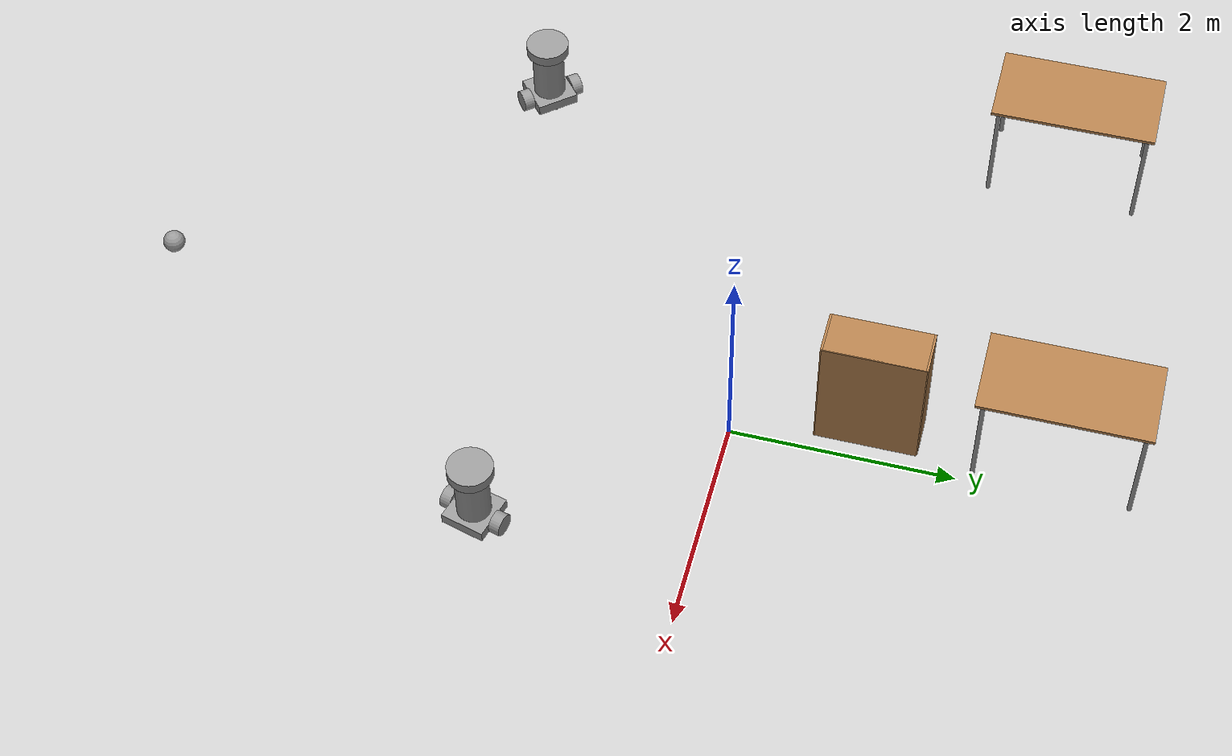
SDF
<sdf version="1.6">
 <world name="default">
  <model name="ground_plane">
   <static>1</static>
   <link name="link">
    <collision name="collision">
     <geometry><plane><normal>0 0 1</normal><size>100 100</size></plane></geometry>
     <surface>
      <contact><collide_bitmask>65535</collide_bitmask></contact>
      <friction><ode><mu>100</mu><mu2>50</mu2></ode></friction>
     </surface>
    </collision>
    <visual name="visual">
     <cast_shadows>0</cast_shadows>
     <geometry><plane><normal>0 0 1</normal><size>100 100</size></plane></geometry>
     <material>
      <script><uri>file://media/materials/scripts/gazebo.material</uri><name>Gazebo/Grey</name></script>
     </material>
    </visual>
   </link>
  </model>
  <model name="table_clone">
   <static>1</static>
   <link name="link">
    <collision name="surface">
     <pose>0 0 1 0 -0 0</pose>
     <geometry><box><size>1.5 0.8 0.03</size></box></geometry>
     <surface><friction><ode><mu>0.6</mu><mu2>0.6</mu2></ode></friction></surface>
    </collision>
    <visual name="visual1">
     <pose>0 0 1 0 -0 0</pose>
     <geometry><box><size>1.5 0.8 0.03</size></box></geometry>
     <material>
      <script><uri>file://media/materials/scripts/gazebo.material</uri><name>Gazebo/Wood</name></script>
     </material>
    </visual>
    <collision name="front_left_leg">
     <pose>0.68 0.38 0.5 0 -0 0</pose>
     <geometry><cylinder><radius>0.02</radius><length>1</length></cylinder></geometry>
    </collision>
    <visual name="front_left_leg">
     <pose>0.68 0.38 0.5 0 -0 0</pose>
     <geometry><cylinder><radius>0.02</radius><length>1</length></cylinder></geometry>
     <material>
      <script><uri>file://media/materials/scripts/gazebo.material</uri><name>Gazebo/Grey</name></script>
     </material>
    </visual>
    <collision name="front_right_leg">
     <pose>0.68 -0.38 0.5 0 -0 0</pose>
     <geometry><cylinder><radius>0.02</radius><length>1</length></cylinder></geometry>
    </collision>
    <visual name="front_right_leg">
     <pose>0.68 -0.38 0.5 0 -0 0</pose>
     <geometry><cylinder><radius>0.02</radius><length>1</length></cylinder></geometry>
     <material>
      <script><uri>file://media/materials/scripts/gazebo.material</uri><name>Gazebo/Grey</name></script>
     </material>
    </visual>
    <collision name="back_right_leg">
     <pose>-0.68 -0.38 0.5 0 -0 0</pose>
     <geometry><cylinder><radius>0.02</radius><length>1</length></cylinder></geometry>
    </collision>
    <visual name="back_right_leg">
     <pose>-0.68 -0.38 0.5 0 -0 0</pose>
     <geometry><cylinder><radius>0.02</radius><length>1</length></cylinder></geometry>
     <material>
      <script><uri>file://media/materials/scripts/gazebo.material</uri><name>Gazebo/Grey</name></script>
     </material>
    </visual>
    <collision name="back_left_leg">
     <pose>-0.68 0.38 0.5 0 -0 0</pose>
     <geometry><cylinder><radius>0.02</radius><length>1</length></cylinder></geometry>
    </collision>
    <visual name="back_left_leg">
     <pose>-0.68 0.38 0.5 0 -0 0</pose>
     <geometry><cylinder><radius>0.02</radius><length>1</length></cylinder></geometry>
     <material>
      <script><uri>file://media/materials/scripts/gazebo.material</uri><name>Gazebo/Grey</name></script>
     </material>
    </visual>
   </link>
   <pose>-0.445123 2.80854 0 0 -0 1.57</pose>
  </model>
  <model name="table_clone_1">
   <static>1</static>
   <link name="link">
    <collision name="surface">
     <pose>0 0 1 0 -0 0</pose>
     <geometry><box><size>1.5 0.8 0.03</size></box></geometry>
     <surface><friction><ode><mu>0.6</mu><mu2>0.6</mu2></ode></friction></surface>
    </collision>
    <visual name="visual1">
     <pose>0 0 1 0 -0 0</pose>
     <geometry><box><size>1.5 0.8 0.03</size></box></geometry>
     <material>
      <script><uri>file://media/materials/scripts/gazebo.material</uri><name>Gazebo/Wood</name></script>
     </material>
    </visual>
    <collision name="front_left_leg">
     <pose>0.68 0.38 0.5 0 -0 0</pose>
     <geometry><cylinder><radius>0.02</radius><length>1</length></cylinder></geometry>
    </collision>
    <visual name="front_left_leg">
     <pose>0.68 0.38 0.5 0 -0 0</pose>
     <geometry><cylinder><radius>0.02</radius><length>1</length></cylinder></geometry>
     <material>
      <script><uri>file://media/materials/scripts/gazebo.material</uri><name>Gazebo/Grey</name></script>
     </material>
    </visual>
    <collision name="front_right_leg">
     <pose>0.68 -0.38 0.5 0 -0 0</pose>
     <geometry><cylinder><radius>0.02</radius><length>1</length></cylinder></geometry>
    </collision>
    <visual name="front_right_leg">
     <pose>0.68 -0.38 0.5 0 -0 0</pose>
     <geometry><cylinder><radius>0.02</radius><length>1</length></cylinder></geometry>
     <material>
      <script><uri>file://media/materials/scripts/gazebo.material</uri><name>Gazebo/Grey</name></script>
     </material>
    </visual>
    <collision name="back_right_leg">
     <pose>-0.68 -0.38 0.5 0 -0 0</pose>
     <geometry><cylinder><radius>0.02</radius><length>1</length></cylinder></geometry>
    </collision>
    <visual name="back_right_leg">
     <pose>-0.68 -0.38 0.5 0 -0 0</pose>
     <geometry><cylinder><radius>0.02</radius><length>1</length></cylinder></geometry>
     <material>
      <script><uri>file://media/materials/scripts/gazebo.material</uri><name>Gazebo/Grey</name></script>
     </material>
    </visual>
    <collision name="back_left_leg">
     <pose>-0.68 0.38 0.5 0 -0 0</pose>
     <geometry><cylinder><radius>0.02</radius><length>1</length></cylinder></geometry>
    </collision>
    <visual name="back_left_leg">
     <pose>-0.68 0.38 0.5 0 -0 0</pose>
     <geometry><cylinder><radius>0.02</radius><length>1</length></cylinder></geometry>
     <material>
      <script><uri>file://media/materials/scripts/gazebo.material</uri><name>Gazebo/Grey</name></script>
     </material>
    </visual>
   </link>
   <pose>-3.78233 2.37452 0 0 -0 1.57</pose>
  </model>
  <model name="bookshelf_0">
   <static>1</static>
   <link name="link">
    <inertial><mass>1</mass></inertial>
    <collision name="back">
     <pose>0 0.005 0.6 0 -0 0</pose>
     <geometry><box><size>0.9 0.01 1.2</size></box></geometry>
    </collision>
    <visual name="visual1">
     <pose>0 0.005 0.6 0 -0 0</pose>
     <geometry><box><size>0.9 0.01 1.2</size></box></geometry>
     <material>
      <script><uri>file://media/materials/scripts/gazebo.material</uri><name>Gazebo/Wood</name></script>
     </material>
    </visual>
    <collision name="left_side">
     <pose>0.45 -0.195 0.6 0 -0 0</pose>
     <geometry><box><size>0.02 0.4 1.2</size></box></geometry>
    </collision>
    <visual name="visual2">
     <pose>0.45 -0.195 0.6 0 -0 0</pose>
     <geometry><box><size>0.02 0.4 1.2</size></box></geometry>
     <material>
      <script><uri>file://media/materials/scripts/gazebo.material</uri><name>Gazebo/Wood</name></script>
     </material>
    </visual>
    <collision name="right_side">
     <pose>-0.45 -0.195 0.6 0 -0 0</pose>
     <geometry><box><size>0.02 0.4 1.2</size></box></geometry>
    </collision>
    <visual name="visual3">
     <pose>-0.45 -0.195 0.6 0 -0 0</pose>
     <geometry><box><size>0.02 0.4 1.2</size></box></geometry>
     <material>
      <script><uri>file://media/materials/scripts/gazebo.material</uri><name>Gazebo/Wood</name></script>
     </material>
    </visual>
    <collision name="bottom">
     <pose>0 -0.195 0.03 0 -0 0</pose>
     <geometry><box><size>0.88 0.4 0.06</size></box></geometry>
    </collision>
    <visual name="visual4">
     <pose>0 -0.195 0.03 0 -0 0</pose>
     <geometry><box><size>0.88 0.4 0.06</size></box></geometry>
     <material>
      <script><uri>file://media/materials/scripts/gazebo.material</uri><name>Gazebo/Wood</name></script>
     </material>
    </visual>
    <collision name="top">
     <pose>0 -0.195 1.19 0 -0 0</pose>
     <geometry><box><size>0.88 0.4 0.02</size></box></geometry>
    </collision>
    <visual name="visual5">
     <pose>0 -0.195 1.19 0 -0 0</pose>
     <geometry><box><size>0.88 0.4 0.02</size></box></geometry>
     <material>
      <script><uri>file://media/materials/scripts/gazebo.material</uri><name>Gazebo/Wood</name></script>
     </material>
    </visual>
    <collision name="low_shelf">
     <pose>0 -0.195 0.43 0 -0 0</pose>
     <geometry><box><size>0.88 0.4 0.02</size></box></geometry>
    </collision>
    <visual name="visual6">
     <pose>0 -0.195 0.43 0 -0 0</pose>
     <geometry><box><size>0.88 0.4 0.02</size></box></geometry>
     <material>
      <script><uri>file://media/materials/scripts/gazebo.material</uri><name>Gazebo/Wood</name></script>
     </material>
    </visual>
    <collision name="high_shelf">
     <pose>0 -0.195 0.8 0 -0 0</pose>
     <geometry><box><size>0.88 0.4 0.02</size></box></geometry>
    </collision>
    <visual name="visual7">
     <pose>0 -0.195 0.8 0 -0 0</pose>
     <geometry><box><size>0.88 0.4 0.02</size></box></geometry>
     <material>
      <script><uri>file://media/materials/scripts/gazebo.material</uri><name>Gazebo/Wood</name></script>
     </material>
    </visual>
   </link>
   <pose>-0.161686 1.17476 0 0 0 -1.57</pose>
  </model>
  <model name="ServeronWheels">
   <link name="link_4">
    <pose>1.37401 -0.876349 0.5 1.5e-05 1e-06 -0.001069</pose>
    <inertial>
     <mass>1</mass>
     <inertia>
      <ixx>0.166667</ixx>
      <ixy>0</ixy>
      <ixz>0</ixz>
      <iyy>0.166667</iyy>
      <iyz>0</iyz>
      <izz>0.166667</izz>
     </inertia>
    </inertial>
    <visual name="visual">
     <geometry><box><size>0.4 0.4 0.1</size></box></geometry>
     <material>
      <lighting>1</lighting>
      <script><uri>file://media/materials/scripts/gazebo.material</uri><name>Gazebo/Grey</name></script>
      <shader type="pixel"><normal_map>__default__</normal_map></shader>
      <ambient>0.3 0.3 0.3 1</ambient>
      <diffuse>0.7 0.7 0.7 1</diffuse>
      <specular>0.01 0.01 0.01 1</specular>
      <emissive>0 0 0 1</emissive>
     </material>
    </visual>
    <collision name="collision">
     <geometry><box><size>0.4 0.4 0.1</size></box></geometry>
     <surface>
      <friction>
       <ode><mu>1</mu><mu2>1</mu2><fdir1>0 0 0</fdir1><slip1>0</slip1><slip2>0</slip2></ode>
       <torsional>
        <coefficient>1</coefficient>
        <patch_radius>0</patch_radius>
        <surface_radius>0</surface_radius>
        <use_patch_radius>1</use_patch_radius>
        <ode><slip>0</slip></ode>
       </torsional>
      </friction>
      <bounce><restitution_coefficient>0</restitution_coefficient><threshold>1e+06</threshold></bounce>
      <contact>
       <collide_without_contact>0</collide_without_contact>
       <collide_without_contact_bitmask>1</collide_without_contact_bitmask>
       <collide_bitmask>1</collide_bitmask>
       <ode>
        <soft_cfm>0</soft_cfm>
        <soft_erp>0.2</soft_erp>
        <kp>1e+13</kp>
        <kd>1</kd>
        <max_vel>0.01</max_vel>
        <min_depth>0</min_depth>
       </ode>
       <bullet>
        <split_impulse>1</split_impulse>
        <split_impulse_penetration_threshold>-0.01</split_impulse_penetration_threshold>
        <soft_cfm>0</soft_cfm>
        <soft_erp>0.2</soft_erp>
        <kp>1e+13</kp>
        <kd>1</kd>
       </bullet>
      </contact>
     </surface>
    </collision>
   </link>
   <link name="link_0">
    <pose>1.22401 -0.876187 0.425001 0 -0 0</pose>
    <inertial>
     <mass>1</mass>
     <inertia><ixx>0.1</ixx><ixy>0</ixy><ixz>0</ixz><iyy>0.1</iyy><iyz>0</iyz><izz>0.1</izz></inertia>
    </inertial>
    <visual name="visual">
     <geometry><sphere><radius>0.025</radius></sphere></geometry>
     <material>
      <lighting>1</lighting>
      <script><uri>file://media/materials/scripts/gazebo.material</uri><name>Gazebo/Grey</name></script>
      <shader type="pixel"><normal_map>__default__</normal_map></shader>
      <ambient>0.3 0.3 0.3 1</ambient>
      <diffuse>0.7 0.7 0.7 1</diffuse>
      <specular>0.01 0.01 0.01 1</specular>
      <emissive>0 0 0 1</emissive>
     </material>
    </visual>
    <collision name="collision">
     <geometry><sphere><radius>0.025</radius></sphere></geometry>
     <surface>
      <friction>
       <ode><mu>1</mu><mu2>1</mu2><fdir1>0 0 0</fdir1><slip1>0</slip1><slip2>0</slip2></ode>
       <torsional>
        <coefficient>1</coefficient>
        <patch_radius>0</patch_radius>
        <surface_radius>0</surface_radius>
        <use_patch_radius>1</use_patch_radius>
        <ode><slip>0</slip></ode>
       </torsional>
      </friction>
      <bounce><restitution_coefficient>0</restitution_coefficient><threshold>1e+06</threshold></bounce>
      <contact>
       <collide_without_contact>0</collide_without_contact>
       <collide_without_contact_bitmask>1</collide_without_contact_bitmask>
       <collide_bitmask>1</collide_bitmask>
       <ode>
        <soft_cfm>0</soft_cfm>
        <soft_erp>0.2</soft_erp>
        <kp>1e+13</kp>
        <kd>1</kd>
        <max_vel>0.01</max_vel>
        <min_depth>0</min_depth>
       </ode>
       <bullet>
        <split_impulse>1</split_impulse>
        <split_impulse_penetration_threshold>-0.01</split_impulse_penetration_threshold>
        <soft_cfm>0</soft_cfm>
        <soft_erp>0.2</soft_erp>
        <kp>1e+13</kp>
        <kd>1</kd>
       </bullet>
      </contact>
     </surface>
    </collision>
   </link>
   <link name="link_0_clone">
    <pose>1.52401 -0.876509 0.425 0 -0 0</pose>
    <inertial>
     <mass>1</mass>
     <inertia><ixx>0.1</ixx><ixy>0</ixy><ixz>0</ixz><iyy>0.1</iyy><iyz>0</iyz><izz>0.1</izz></inertia>
    </inertial>
    <visual name="visual">
     <geometry><sphere><radius>0.025</radius></sphere></geometry>
     <material>
      <lighting>1</lighting>
      <script><uri>file://media/materials/scripts/gazebo.material</uri><name>Gazebo/Grey</name></script>
      <shader type="pixel"><normal_map>__default__</normal_map></shader>
      <ambient>0.3 0.3 0.3 1</ambient>
      <diffuse>0.7 0.7 0.7 1</diffuse>
      <specular>0.01 0.01 0.01 1</specular>
      <emissive>0 0 0 1</emissive>
     </material>
    </visual>
    <collision name="collision">
     <geometry><sphere><radius>0.025</radius></sphere></geometry>
     <surface>
      <friction>
       <ode><mu>1</mu><mu2>1</mu2><fdir1>0 0 0</fdir1><slip1>0</slip1><slip2>0</slip2></ode>
       <torsional>
        <coefficient>1</coefficient>
        <patch_radius>0</patch_radius>
        <surface_radius>0</surface_radius>
        <use_patch_radius>1</use_patch_radius>
        <ode><slip>0</slip></ode>
       </torsional>
      </friction>
      <bounce><restitution_coefficient>0</restitution_coefficient><threshold>1e+06</threshold></bounce>
      <contact>
       <collide_without_contact>0</collide_without_contact>
       <collide_without_contact_bitmask>1</collide_without_contact_bitmask>
       <collide_bitmask>1</collide_bitmask>
       <ode>
        <soft_cfm>0</soft_cfm>
        <soft_erp>0.2</soft_erp>
        <kp>1e+13</kp>
        <kd>1</kd>
        <max_vel>0.01</max_vel>
        <min_depth>0</min_depth>
       </ode>
       <bullet>
        <split_impulse>1</split_impulse>
        <split_impulse_penetration_threshold>-0.01</split_impulse_penetration_threshold>
        <soft_cfm>0</soft_cfm>
        <soft_erp>0.2</soft_erp>
        <kp>1e+13</kp>
        <kd>1</kd>
       </bullet>
      </contact>
     </surface>
    </collision>
   </link>
   <link name="link_5">
    <pose>1.35374 -1.12644 0.499883 1.57 1e-06 -0.001069</pose>
    <inertial>
     <mass>1</mass>
     <inertia><ixx>0.145833</ixx><ixy>0</ixy><ixz>0</ixz><iyy>0.145833</iyy><iyz>0</iyz><izz>0.125</izz></inertia>
    </inertial>
    <visual name="visual">
     <geometry><cylinder><radius>0.1</radius><length>0.1</length></cylinder></geometry>
     <material>
      <lighting>1</lighting>
      <script><uri>file://media/materials/scripts/gazebo.material</uri><name>Gazebo/Grey</name></script>
      <shader type="pixel"><normal_map>__default__</normal_map></shader>
      <ambient>0.3 0.3 0.3 1</ambient>
      <diffuse>0.7 0.7 0.7 1</diffuse>
      <specular>0.01 0.01 0.01 1</specular>
      <emissive>0 0 0 1</emissive>
     </material>
    </visual>
    <collision name="collision">
     <geometry><cylinder><radius>0.1</radius><length>0.1</length></cylinder></geometry>
     <surface>
      <friction>
       <ode><mu>1</mu><mu2>1</mu2><fdir1>0 0 0</fdir1><slip1>0</slip1><slip2>0</slip2></ode>
       <torsional>
        <coefficient>1</coefficient>
        <patch_radius>0</patch_radius>
        <surface_radius>0</surface_radius>
        <use_patch_radius>1</use_patch_radius>
        <ode><slip>0</slip></ode>
       </torsional>
      </friction>
      <bounce><restitution_coefficient>0</restitution_coefficient><threshold>1e+06</threshold></bounce>
      <contact>
       <collide_without_contact>0</collide_without_contact>
       <collide_without_contact_bitmask>1</collide_without_contact_bitmask>
       <collide_bitmask>1</collide_bitmask>
       <ode>
        <soft_cfm>0</soft_cfm>
        <soft_erp>0.2</soft_erp>
        <kp>1e+13</kp>
        <kd>1</kd>
        <max_vel>0.01</max_vel>
        <min_depth>0</min_depth>
       </ode>
       <bullet>
        <split_impulse>1</split_impulse>
        <split_impulse_penetration_threshold>-0.01</split_impulse_penetration_threshold>
        <soft_cfm>0</soft_cfm>
        <soft_erp>0.2</soft_erp>
        <kp>1e+13</kp>
        <kd>1</kd>
       </bullet>
      </contact>
     </surface>
    </collision>
   </link>
   <link name="link_5_clone">
    <pose>1.37428 -0.626162 0.499988 1.57001 2e-06 -0.002138</pose>
    <inertial>
     <mass>1</mass>
     <inertia><ixx>0.145833</ixx><ixy>0</ixy><ixz>0</ixz><iyy>0.145833</iyy><iyz>0</iyz><izz>0.125</izz></inertia>
    </inertial>
    <visual name="visual">
     <geometry><cylinder><radius>0.1</radius><length>0.1</length></cylinder></geometry>
     <material>
      <lighting>1</lighting>
      <script><uri>file://media/materials/scripts/gazebo.material</uri><name>Gazebo/Grey</name></script>
      <shader type="pixel"><normal_map>__default__</normal_map></shader>
      <ambient>0.3 0.3 0.3 1</ambient>
      <diffuse>0.7 0.7 0.7 1</diffuse>
      <specular>0.01 0.01 0.01 1</specular>
      <emissive>0 0 0 1</emissive>
     </material>
    </visual>
    <collision name="collision">
     <geometry><cylinder><radius>0.1</radius><length>0.1</length></cylinder></geometry>
     <surface>
      <friction>
       <ode><mu>1</mu><mu2>1</mu2><fdir1>0 0 0</fdir1><slip1>0</slip1><slip2>0</slip2></ode>
       <torsional>
        <coefficient>1</coefficient>
        <patch_radius>0</patch_radius>
        <surface_radius>0</surface_radius>
        <use_patch_radius>1</use_patch_radius>
        <ode><slip>0</slip></ode>
       </torsional>
      </friction>
      <bounce><restitution_coefficient>0</restitution_coefficient><threshold>1e+06</threshold></bounce>
      <contact>
       <collide_without_contact>0</collide_without_contact>
       <collide_without_contact_bitmask>1</collide_without_contact_bitmask>
       <collide_bitmask>1</collide_bitmask>
       <ode>
        <soft_cfm>0</soft_cfm>
        <soft_erp>0.2</soft_erp>
        <kp>1e+13</kp>
        <kd>1</kd>
        <max_vel>0.01</max_vel>
        <min_depth>0</min_depth>
       </ode>
       <bullet>
        <split_impulse>1</split_impulse>
        <split_impulse_penetration_threshold>-0.01</split_impulse_penetration_threshold>
        <soft_cfm>0</soft_cfm>
        <soft_erp>0.2</soft_erp>
        <kp>1e+13</kp>
        <kd>1</kd>
       </bullet>
      </contact>
     </surface>
    </collision>
   </link>
   <link name="link_5_clone_clone">
    <pose>1.37401 -0.876353 0.799991 0 3e-06 -0.003207</pose>
    <inertial>
     <mass>1</mass>
     <inertia><ixx>0.145833</ixx><ixy>0</ixy><ixz>0</ixz><iyy>0.145833</iyy><iyz>0</iyz><izz>0.125</izz></inertia>
    </inertial>
    <visual name="visual">
     <geometry><cylinder><radius>0.15</radius><length>0.5</length></cylinder></geometry>
     <material>
      <lighting>1</lighting>
      <script><uri>file://media/materials/scripts/gazebo.material</uri><name>Gazebo/Grey</name></script>
      <shader type="pixel"><normal_map>__default__</normal_map></shader>
      <ambient>0.3 0.3 0.3 1</ambient>
      <diffuse>0.7 0.7 0.7 1</diffuse>
      <specular>0.01 0.01 0.01 1</specular>
      <emissive>0 0 0 1</emissive>
     </material>
    </visual>
    <collision name="collision">
     <geometry><cylinder><radius>0.15</radius><length>0.5</length></cylinder></geometry>
     <surface>
      <friction>
       <ode><mu>1</mu><mu2>1</mu2><fdir1>0 0 0</fdir1><slip1>0</slip1><slip2>0</slip2></ode>
       <torsional>
        <coefficient>1</coefficient>
        <patch_radius>0</patch_radius>
        <surface_radius>0</surface_radius>
        <use_patch_radius>1</use_patch_radius>
        <ode><slip>0</slip></ode>
       </torsional>
      </friction>
      <bounce><restitution_coefficient>0</restitution_coefficient><threshold>1e+06</threshold></bounce>
      <contact>
       <collide_without_contact>0</collide_without_contact>
       <collide_without_contact_bitmask>1</collide_without_contact_bitmask>
       <collide_bitmask>1</collide_bitmask>
       <ode>
        <soft_cfm>0</soft_cfm>
        <soft_erp>0.2</soft_erp>
        <kp>1e+13</kp>
        <kd>1</kd>
        <max_vel>0.01</max_vel>
        <min_depth>0</min_depth>
       </ode>
       <bullet>
        <split_impulse>1</split_impulse>
        <split_impulse_penetration_threshold>-0.01</split_impulse_penetration_threshold>
        <soft_cfm>0</soft_cfm>
        <soft_erp>0.2</soft_erp>
        <kp>1e+13</kp>
        <kd>1</kd>
       </bullet>
      </contact>
     </surface>
    </collision>
   </link>
   <link name="link_5_clone_clone_clone">
    <pose>1.37401 -0.876358 1.1 1.5e-05 4e-06 -0.004276</pose>
    <inertial>
     <mass>1</mass>
     <inertia><ixx>0.145833</ixx><ixy>0</ixy><ixz>0</ixz><iyy>0.145833</iyy><iyz>0</iyz><izz>0.125</izz></inertia>
    </inertial>
    <visual name="visual">
     <geometry><cylinder><radius>0.2</radius><length>0.1</length></cylinder></geometry>
     <material>
      <lighting>1</lighting>
      <script><uri>file://media/materials/scripts/gazebo.material</uri><name>Gazebo/Grey</name></script>
      <shader type="pixel"><normal_map>__default__</normal_map></shader>
      <ambient>0.3 0.3 0.3 1</ambient>
      <diffuse>0.7 0.7 0.7 1</diffuse>
      <specular>0.01 0.01 0.01 1</specular>
      <emissive>0 0 0 1</emissive>
     </material>
    </visual>
    <collision name="collision">
     <geometry><cylinder><radius>0.2</radius><length>0.1</length></cylinder></geometry>
     <surface>
      <friction>
       <ode><mu>1</mu><mu2>1</mu2><fdir1>0 0 0</fdir1><slip1>0</slip1><slip2>0</slip2></ode>
       <torsional>
        <coefficient>1</coefficient>
        <patch_radius>0</patch_radius>
        <surface_radius>0</surface_radius>
        <use_patch_radius>1</use_patch_radius>
        <ode><slip>0</slip></ode>
       </torsional>
      </friction>
      <bounce><restitution_coefficient>0</restitution_coefficient><threshold>1e+06</threshold></bounce>
      <contact>
       <collide_without_contact>0</collide_without_contact>
       <collide_without_contact_bitmask>1</collide_without_contact_bitmask>
       <collide_bitmask>1</collide_bitmask>
       <ode>
        <soft_cfm>0</soft_cfm>
        <soft_erp>0.2</soft_erp>
        <kp>1e+13</kp>
        <kd>1</kd>
        <max_vel>0.01</max_vel>
        <min_depth>0</min_depth>
       </ode>
       <bullet>
        <split_impulse>1</split_impulse>
        <split_impulse_penetration_threshold>-0.01</split_impulse_penetration_threshold>
        <soft_cfm>0</soft_cfm>
        <soft_erp>0.2</soft_erp>
        <kp>1e+13</kp>
        <kd>1</kd>
       </bullet>
      </contact>
     </surface>
    </collision>
   </link>
   <joint name="link_4_JOINT_1" type="ball">
    <parent>link_4</parent>
    <child>link_0_clone</child>
    <physics>
     <ode><limit><cfm>0</cfm><erp>0.2</erp></limit><suspension><cfm>0</cfm><erp>0.2</erp></suspension></ode>
    </physics>
   </joint>
   <joint name="link_4_JOINT_4_0" type="ball">
    <parent>link_4</parent>
    <child>link_0</child>
    <physics>
     <ode><limit><cfm>0</cfm><erp>0.2</erp></limit><suspension><cfm>0</cfm><erp>0.2</erp></suspension></ode>
    </physics>
   </joint>
   <joint name="link_4_JOINT_4" type="revolute">
    <parent>link_4</parent>
    <child>link_5</child>
    <axis>
     <xyz>0 0 1</xyz>
     <use_parent_model_frame>0</use_parent_model_frame>
     <limit>
      <lower>-1.79769e+308</lower>
      <upper>1.79769e+308</upper>
      <effort>-1</effort>
      <velocity>-1</velocity>
     </limit>
     <dynamics>
      <spring_reference>0</spring_reference>
      <spring_stiffness>0</spring_stiffness>
      <damping>0</damping>
      <friction>0</friction>
     </dynamics>
    </axis>
    <physics>
     <ode><limit><cfm>0</cfm><erp>0.2</erp></limit><suspension><cfm>0</cfm><erp>0.2</erp></suspension></ode>
    </physics>
   </joint>
   <joint name="link_4_JOINT_5" type="revolute">
    <parent>link_4</parent>
    <child>link_5_clone</child>
    <axis>
     <xyz>0 0 1</xyz>
     <use_parent_model_frame>0</use_parent_model_frame>
     <limit><lower>-1e+16</lower><upper>1e+16</upper><effort>-1</effort><velocity>-1</velocity></limit>
     <dynamics>
      <spring_reference>0</spring_reference>
      <spring_stiffness>0</spring_stiffness>
      <damping>0</damping>
      <friction>0</friction>
     </dynamics>
    </axis>
    <physics>
     <ode><limit><cfm>0</cfm><erp>0.2</erp></limit><suspension><cfm>0</cfm><erp>0.2</erp></suspension></ode>
    </physics>
   </joint>
   <joint name="link_4_JOINT_6" type="fixed">
    <parent>link_4</parent>
    <child>link_5_clone_clone</child>
    <physics>
     <ode><limit><cfm>0</cfm><erp>0.2</erp></limit><suspension><cfm>0</cfm><erp>0.2</erp></suspension></ode>
    </physics>
   </joint>
   <joint name="link_5_clone_clone_JOINT_7" type="fixed">
    <parent>link_5_clone_clone</parent>
    <child>link_5_clone_clone_clone</child>
    <physics>
     <ode><limit><cfm>0</cfm><erp>0.2</erp></limit><suspension><cfm>0</cfm><erp>0.2</erp></suspension></ode>
    </physics>
   </joint>
   <static>0</static>
   <pose>-1.85729 -2.39912 -0.399088 -0.000181 0.000702 -2.42882</pose>
  </model>
  <model name="ServeronWheels_0">
   <link name="link_4">
    <pose>1.37401 -0.876349 0.5 1.5e-05 1e-06 -0.001069</pose>
    <inertial>
     <mass>1</mass>
     <inertia>
      <ixx>0.166667</ixx>
      <ixy>0</ixy>
      <ixz>0</ixz>
      <iyy>0.166667</iyy>
      <iyz>0</iyz>
      <izz>0.166667</izz>
     </inertia>
    </inertial>
    <visual name="visual">
     <geometry><box><size>0.4 0.4 0.1</size></box></geometry>
     <material>
      <lighting>1</lighting>
      <script><uri>file://media/materials/scripts/gazebo.material</uri><name>Gazebo/Grey</name></script>
      <shader type="pixel"><normal_map>__default__</normal_map></shader>
      <ambient>0.3 0.3 0.3 1</ambient>
      <diffuse>0.7 0.7 0.7 1</diffuse>
      <specular>0.01 0.01 0.01 1</specular>
      <emissive>0 0 0 1</emissive>
     </material>
    </visual>
    <collision name="collision">
     <geometry><box><size>0.4 0.4 0.1</size></box></geometry>
     <surface>
      <friction>
       <ode><mu>1</mu><mu2>1</mu2><fdir1>0 0 0</fdir1><slip1>0</slip1><slip2>0</slip2></ode>
       <torsional>
        <coefficient>1</coefficient>
        <patch_radius>0</patch_radius>
        <surface_radius>0</surface_radius>
        <use_patch_radius>1</use_patch_radius>
        <ode><slip>0</slip></ode>
       </torsional>
      </friction>
      <bounce><restitution_coefficient>0</restitution_coefficient><threshold>1e+06</threshold></bounce>
      <contact>
       <collide_without_contact>0</collide_without_contact>
       <collide_without_contact_bitmask>1</collide_without_contact_bitmask>
       <collide_bitmask>1</collide_bitmask>
       <ode>
        <soft_cfm>0</soft_cfm>
        <soft_erp>0.2</soft_erp>
        <kp>1e+13</kp>
        <kd>1</kd>
        <max_vel>0.01</max_vel>
        <min_depth>0</min_depth>
       </ode>
       <bullet>
        <split_impulse>1</split_impulse>
        <split_impulse_penetration_threshold>-0.01</split_impulse_penetration_threshold>
        <soft_cfm>0</soft_cfm>
        <soft_erp>0.2</soft_erp>
        <kp>1e+13</kp>
        <kd>1</kd>
       </bullet>
      </contact>
     </surface>
    </collision>
   </link>
   <link name="link_0">
    <pose>1.22401 -0.876187 0.425001 0 -0 0</pose>
    <inertial>
     <mass>1</mass>
     <inertia><ixx>0.1</ixx><ixy>0</ixy><ixz>0</ixz><iyy>0.1</iyy><iyz>0</iyz><izz>0.1</izz></inertia>
    </inertial>
    <visual name="visual">
     <geometry><sphere><radius>0.025</radius></sphere></geometry>
     <material>
      <lighting>1</lighting>
      <script><uri>file://media/materials/scripts/gazebo.material</uri><name>Gazebo/Grey</name></script>
      <shader type="pixel"><normal_map>__default__</normal_map></shader>
      <ambient>0.3 0.3 0.3 1</ambient>
      <diffuse>0.7 0.7 0.7 1</diffuse>
      <specular>0.01 0.01 0.01 1</specular>
      <emissive>0 0 0 1</emissive>
     </material>
    </visual>
    <collision name="collision">
     <geometry><sphere><radius>0.025</radius></sphere></geometry>
     <surface>
      <friction>
       <ode><mu>1</mu><mu2>1</mu2><fdir1>0 0 0</fdir1><slip1>0</slip1><slip2>0</slip2></ode>
       <torsional>
        <coefficient>1</coefficient>
        <patch_radius>0</patch_radius>
        <surface_radius>0</surface_radius>
        <use_patch_radius>1</use_patch_radius>
        <ode><slip>0</slip></ode>
       </torsional>
      </friction>
      <bounce><restitution_coefficient>0</restitution_coefficient><threshold>1e+06</threshold></bounce>
      <contact>
       <collide_without_contact>0</collide_without_contact>
       <collide_without_contact_bitmask>1</collide_without_contact_bitmask>
       <collide_bitmask>1</collide_bitmask>
       <ode>
        <soft_cfm>0</soft_cfm>
        <soft_erp>0.2</soft_erp>
        <kp>1e+13</kp>
        <kd>1</kd>
        <max_vel>0.01</max_vel>
        <min_depth>0</min_depth>
       </ode>
       <bullet>
        <split_impulse>1</split_impulse>
        <split_impulse_penetration_threshold>-0.01</split_impulse_penetration_threshold>
        <soft_cfm>0</soft_cfm>
        <soft_erp>0.2</soft_erp>
        <kp>1e+13</kp>
        <kd>1</kd>
       </bullet>
      </contact>
     </surface>
    </collision>
   </link>
   <link name="link_0_clone">
    <pose>1.52401 -0.876509 0.425 0 -0 0</pose>
    <inertial>
     <mass>1</mass>
     <inertia><ixx>0.1</ixx><ixy>0</ixy><ixz>0</ixz><iyy>0.1</iyy><iyz>0</iyz><izz>0.1</izz></inertia>
    </inertial>
    <visual name="visual">
     <geometry><sphere><radius>0.025</radius></sphere></geometry>
     <material>
      <lighting>1</lighting>
      <script><uri>file://media/materials/scripts/gazebo.material</uri><name>Gazebo/Grey</name></script>
      <shader type="pixel"><normal_map>__default__</normal_map></shader>
      <ambient>0.3 0.3 0.3 1</ambient>
      <diffuse>0.7 0.7 0.7 1</diffuse>
      <specular>0.01 0.01 0.01 1</specular>
      <emissive>0 0 0 1</emissive>
     </material>
    </visual>
    <collision name="collision">
     <geometry><sphere><radius>0.025</radius></sphere></geometry>
     <surface>
      <friction>
       <ode><mu>1</mu><mu2>1</mu2><fdir1>0 0 0</fdir1><slip1>0</slip1><slip2>0</slip2></ode>
       <torsional>
        <coefficient>1</coefficient>
        <patch_radius>0</patch_radius>
        <surface_radius>0</surface_radius>
        <use_patch_radius>1</use_patch_radius>
        <ode><slip>0</slip></ode>
       </torsional>
      </friction>
      <bounce><restitution_coefficient>0</restitution_coefficient><threshold>1e+06</threshold></bounce>
      <contact>
       <collide_without_contact>0</collide_without_contact>
       <collide_without_contact_bitmask>1</collide_without_contact_bitmask>
       <collide_bitmask>1</collide_bitmask>
       <ode>
        <soft_cfm>0</soft_cfm>
        <soft_erp>0.2</soft_erp>
        <kp>1e+13</kp>
        <kd>1</kd>
        <max_vel>0.01</max_vel>
        <min_depth>0</min_depth>
       </ode>
       <bullet>
        <split_impulse>1</split_impulse>
        <split_impulse_penetration_threshold>-0.01</split_impulse_penetration_threshold>
        <soft_cfm>0</soft_cfm>
        <soft_erp>0.2</soft_erp>
        <kp>1e+13</kp>
        <kd>1</kd>
       </bullet>
      </contact>
     </surface>
    </collision>
   </link>
   <link name="link_5">
    <pose>1.35374 -1.12644 0.499883 1.57 1e-06 -0.001069</pose>
    <inertial>
     <mass>1</mass>
     <inertia><ixx>0.145833</ixx><ixy>0</ixy><ixz>0</ixz><iyy>0.145833</iyy><iyz>0</iyz><izz>0.125</izz></inertia>
    </inertial>
    <visual name="visual">
     <geometry><cylinder><radius>0.1</radius><length>0.1</length></cylinder></geometry>
     <material>
      <lighting>1</lighting>
      <script><uri>file://media/materials/scripts/gazebo.material</uri><name>Gazebo/Grey</name></script>
      <shader type="pixel"><normal_map>__default__</normal_map></shader>
      <ambient>0.3 0.3 0.3 1</ambient>
      <diffuse>0.7 0.7 0.7 1</diffuse>
      <specular>0.01 0.01 0.01 1</specular>
      <emissive>0 0 0 1</emissive>
     </material>
    </visual>
    <collision name="collision">
     <geometry><cylinder><radius>0.1</radius><length>0.1</length></cylinder></geometry>
     <surface>
      <friction>
       <ode><mu>1</mu><mu2>1</mu2><fdir1>0 0 0</fdir1><slip1>0</slip1><slip2>0</slip2></ode>
       <torsional>
        <coefficient>1</coefficient>
        <patch_radius>0</patch_radius>
        <surface_radius>0</surface_radius>
        <use_patch_radius>1</use_patch_radius>
        <ode><slip>0</slip></ode>
       </torsional>
      </friction>
      <bounce><restitution_coefficient>0</restitution_coefficient><threshold>1e+06</threshold></bounce>
      <contact>
       <collide_without_contact>0</collide_without_contact>
       <collide_without_contact_bitmask>1</collide_without_contact_bitmask>
       <collide_bitmask>1</collide_bitmask>
       <ode>
        <soft_cfm>0</soft_cfm>
        <soft_erp>0.2</soft_erp>
        <kp>1e+13</kp>
        <kd>1</kd>
        <max_vel>0.01</max_vel>
        <min_depth>0</min_depth>
       </ode>
       <bullet>
        <split_impulse>1</split_impulse>
        <split_impulse_penetration_threshold>-0.01</split_impulse_penetration_threshold>
        <soft_cfm>0</soft_cfm>
        <soft_erp>0.2</soft_erp>
        <kp>1e+13</kp>
        <kd>1</kd>
       </bullet>
      </contact>
     </surface>
    </collision>
   </link>
   <link name="link_5_clone">
    <pose>1.37428 -0.626162 0.499988 1.57001 2e-06 -0.002138</pose>
    <inertial>
     <mass>1</mass>
     <inertia><ixx>0.145833</ixx><ixy>0</ixy><ixz>0</ixz><iyy>0.145833</iyy><iyz>0</iyz><izz>0.125</izz></inertia>
    </inertial>
    <visual name="visual">
     <geometry><cylinder><radius>0.1</radius><length>0.1</length></cylinder></geometry>
     <material>
      <lighting>1</lighting>
      <script><uri>file://media/materials/scripts/gazebo.material</uri><name>Gazebo/Grey</name></script>
      <shader type="pixel"><normal_map>__default__</normal_map></shader>
      <ambient>0.3 0.3 0.3 1</ambient>
      <diffuse>0.7 0.7 0.7 1</diffuse>
      <specular>0.01 0.01 0.01 1</specular>
      <emissive>0 0 0 1</emissive>
     </material>
    </visual>
    <collision name="collision">
     <geometry><cylinder><radius>0.1</radius><length>0.1</length></cylinder></geometry>
     <surface>
      <friction>
       <ode><mu>1</mu><mu2>1</mu2><fdir1>0 0 0</fdir1><slip1>0</slip1><slip2>0</slip2></ode>
       <torsional>
        <coefficient>1</coefficient>
        <patch_radius>0</patch_radius>
        <surface_radius>0</surface_radius>
        <use_patch_radius>1</use_patch_radius>
        <ode><slip>0</slip></ode>
       </torsional>
      </friction>
      <bounce><restitution_coefficient>0</restitution_coefficient><threshold>1e+06</threshold></bounce>
      <contact>
       <collide_without_contact>0</collide_without_contact>
       <collide_without_contact_bitmask>1</collide_without_contact_bitmask>
       <collide_bitmask>1</collide_bitmask>
       <ode>
        <soft_cfm>0</soft_cfm>
        <soft_erp>0.2</soft_erp>
        <kp>1e+13</kp>
        <kd>1</kd>
        <max_vel>0.01</max_vel>
        <min_depth>0</min_depth>
       </ode>
       <bullet>
        <split_impulse>1</split_impulse>
        <split_impulse_penetration_threshold>-0.01</split_impulse_penetration_threshold>
        <soft_cfm>0</soft_cfm>
        <soft_erp>0.2</soft_erp>
        <kp>1e+13</kp>
        <kd>1</kd>
       </bullet>
      </contact>
     </surface>
    </collision>
   </link>
   <link name="link_5_clone_clone">
    <pose>1.37401 -0.876353 0.799991 0 3e-06 -0.003207</pose>
    <inertial>
     <mass>1</mass>
     <inertia><ixx>0.145833</ixx><ixy>0</ixy><ixz>0</ixz><iyy>0.145833</iyy><iyz>0</iyz><izz>0.125</izz></inertia>
    </inertial>
    <visual name="visual">
     <geometry><cylinder><radius>0.15</radius><length>0.5</length></cylinder></geometry>
     <material>
      <lighting>1</lighting>
      <script><uri>file://media/materials/scripts/gazebo.material</uri><name>Gazebo/Grey</name></script>
      <shader type="pixel"><normal_map>__default__</normal_map></shader>
      <ambient>0.3 0.3 0.3 1</ambient>
      <diffuse>0.7 0.7 0.7 1</diffuse>
      <specular>0.01 0.01 0.01 1</specular>
      <emissive>0 0 0 1</emissive>
     </material>
    </visual>
    <collision name="collision">
     <geometry><cylinder><radius>0.15</radius><length>0.5</length></cylinder></geometry>
     <surface>
      <friction>
       <ode><mu>1</mu><mu2>1</mu2><fdir1>0 0 0</fdir1><slip1>0</slip1><slip2>0</slip2></ode>
       <torsional>
        <coefficient>1</coefficient>
        <patch_radius>0</patch_radius>
        <surface_radius>0</surface_radius>
        <use_patch_radius>1</use_patch_radius>
        <ode><slip>0</slip></ode>
       </torsional>
      </friction>
      <bounce><restitution_coefficient>0</restitution_coefficient><threshold>1e+06</threshold></bounce>
      <contact>
       <collide_without_contact>0</collide_without_contact>
       <collide_without_contact_bitmask>1</collide_without_contact_bitmask>
       <collide_bitmask>1</collide_bitmask>
       <ode>
        <soft_cfm>0</soft_cfm>
        <soft_erp>0.2</soft_erp>
        <kp>1e+13</kp>
        <kd>1</kd>
        <max_vel>0.01</max_vel>
        <min_depth>0</min_depth>
       </ode>
       <bullet>
        <split_impulse>1</split_impulse>
        <split_impulse_penetration_threshold>-0.01</split_impulse_penetration_threshold>
        <soft_cfm>0</soft_cfm>
        <soft_erp>0.2</soft_erp>
        <kp>1e+13</kp>
        <kd>1</kd>
       </bullet>
      </contact>
     </surface>
    </collision>
   </link>
   <link name="link_5_clone_clone_clone">
    <pose>1.37401 -0.876358 1.1 1.5e-05 4e-06 -0.004276</pose>
    <inertial>
     <mass>1</mass>
     <inertia><ixx>0.145833</ixx><ixy>0</ixy><ixz>0</ixz><iyy>0.145833</iyy><iyz>0</iyz><izz>0.125</izz></inertia>
    </inertial>
    <visual name="visual">
     <geometry><cylinder><radius>0.2</radius><length>0.1</length></cylinder></geometry>
     <material>
      <lighting>1</lighting>
      <script><uri>file://media/materials/scripts/gazebo.material</uri><name>Gazebo/Grey</name></script>
      <shader type="pixel"><normal_map>__default__</normal_map></shader>
      <ambient>0.3 0.3 0.3 1</ambient>
      <diffuse>0.7 0.7 0.7 1</diffuse>
      <specular>0.01 0.01 0.01 1</specular>
      <emissive>0 0 0 1</emissive>
     </material>
    </visual>
    <collision name="collision">
     <geometry><cylinder><radius>0.2</radius><length>0.1</length></cylinder></geometry>
     <surface>
      <friction>
       <ode><mu>1</mu><mu2>1</mu2><fdir1>0 0 0</fdir1><slip1>0</slip1><slip2>0</slip2></ode>
       <torsional>
        <coefficient>1</coefficient>
        <patch_radius>0</patch_radius>
        <surface_radius>0</surface_radius>
        <use_patch_radius>1</use_patch_radius>
        <ode><slip>0</slip></ode>
       </torsional>
      </friction>
      <bounce><restitution_coefficient>0</restitution_coefficient><threshold>1e+06</threshold></bounce>
      <contact>
       <collide_without_contact>0</collide_without_contact>
       <collide_without_contact_bitmask>1</collide_without_contact_bitmask>
       <collide_bitmask>1</collide_bitmask>
       <ode>
        <soft_cfm>0</soft_cfm>
        <soft_erp>0.2</soft_erp>
        <kp>1e+13</kp>
        <kd>1</kd>
        <max_vel>0.01</max_vel>
        <min_depth>0</min_depth>
       </ode>
       <bullet>
        <split_impulse>1</split_impulse>
        <split_impulse_penetration_threshold>-0.01</split_impulse_penetration_threshold>
        <soft_cfm>0</soft_cfm>
        <soft_erp>0.2</soft_erp>
        <kp>1e+13</kp>
        <kd>1</kd>
       </bullet>
      </contact>
     </surface>
    </collision>
   </link>
   <joint name="link_4_JOINT_1" type="ball">
    <parent>link_4</parent>
    <child>link_0_clone</child>
    <physics>
     <ode><limit><cfm>0</cfm><erp>0.2</erp></limit><suspension><cfm>0</cfm><erp>0.2</erp></suspension></ode>
    </physics>
   </joint>
   <joint name="link_4_JOINT_4_0" type="ball">
    <parent>link_4</parent>
    <child>link_0</child>
    <physics>
     <ode><limit><cfm>0</cfm><erp>0.2</erp></limit><suspension><cfm>0</cfm><erp>0.2</erp></suspension></ode>
    </physics>
   </joint>
   <joint name="link_4_JOINT_4" type="revolute">
    <parent>link_4</parent>
    <child>link_5</child>
    <axis>
     <xyz>0 0 1</xyz>
     <use_parent_model_frame>0</use_parent_model_frame>
     <limit>
      <lower>-1.79769e+308</lower>
      <upper>1.79769e+308</upper>
      <effort>-1</effort>
      <velocity>-1</velocity>
     </limit>
     <dynamics>
      <spring_reference>0</spring_reference>
      <spring_stiffness>0</spring_stiffness>
      <damping>0</damping>
      <friction>0</friction>
     </dynamics>
    </axis>
    <physics>
     <ode><limit><cfm>0</cfm><erp>0.2</erp></limit><suspension><cfm>0</cfm><erp>0.2</erp></suspension></ode>
    </physics>
   </joint>
   <joint name="link_4_JOINT_5" type="revolute">
    <parent>link_4</parent>
    <child>link_5_clone</child>
    <axis>
     <xyz>0 0 1</xyz>
     <use_parent_model_frame>0</use_parent_model_frame>
     <limit><lower>-1e+16</lower><upper>1e+16</upper><effort>-1</effort><velocity>-1</velocity></limit>
     <dynamics>
      <spring_reference>0</spring_reference>
      <spring_stiffness>0</spring_stiffness>
      <damping>0</damping>
      <friction>0</friction>
     </dynamics>
    </axis>
    <physics>
     <ode><limit><cfm>0</cfm><erp>0.2</erp></limit><suspension><cfm>0</cfm><erp>0.2</erp></suspension></ode>
    </physics>
   </joint>
   <joint name="link_4_JOINT_6" type="fixed">
    <parent>link_4</parent>
    <child>link_5_clone_clone</child>
    <physics>
     <ode><limit><cfm>0</cfm><erp>0.2</erp></limit><suspension><cfm>0</cfm><erp>0.2</erp></suspension></ode>
    </physics>
   </joint>
   <joint name="link_5_clone_clone_JOINT_7" type="fixed">
    <parent>link_5_clone_clone</parent>
    <child>link_5_clone_clone_clone</child>
    <physics>
     <ode><limit><cfm>0</cfm><erp>0.2</erp></limit><suspension><cfm>0</cfm><erp>0.2</erp></suspension></ode>
    </physics>
   </joint>
   <static>0</static>
   <pose>0.316301 -0.678425 -0.399147 -0.000183 0.000659 -0.260246</pose>
  </model>
  <model name="my_ball">
   <link name="link_0">
    <inertial>
     <mass>1</mass>
     <inertia><ixx>0.1</ixx><ixy>0</ixy><ixz>0</ixz><iyy>0.1</iyy><iyz>0</iyz><izz>0.1</izz></inertia>
    </inertial>
    <visual name="visual">
     <geometry><sphere><radius>0.1</radius></sphere></geometry>
     <material>
      <lighting>1</lighting>
      <script><uri>file://media/materials/scripts/gazebo.material</uri><name>Gazebo/Grey</name></script>
      <shader type="pixel"><normal_map>__default__</normal_map></shader>
      <ambient>1 1 1 1</ambient>
      <diffuse>1 1 1 1</diffuse>
      <specular>1 1 1 1</specular>
      <emissive>1 1 1 1</emissive>
     </material>
    </visual>
    <collision name="collision">
     <geometry><sphere><radius>0.1</radius></sphere></geometry>
     <surface>
      <friction>
       <ode><mu>1</mu><mu2>1</mu2><fdir1>0 0 0</fdir1><slip1>0</slip1><slip2>0</slip2></ode>
       <torsional>
        <coefficient>1</coefficient>
        <patch_radius>0</patch_radius>
        <surface_radius>0</surface_radius>
        <use_patch_radius>1</use_patch_radius>
        <ode><slip>0</slip></ode>
       </torsional>
      </friction>
      <bounce><restitution_coefficient>0</restitution_coefficient><threshold>1e+06</threshold></bounce>
      <contact>
       <collide_without_contact>0</collide_without_contact>
       <collide_without_contact_bitmask>1</collide_without_contact_bitmask>
       <collide_bitmask>1</collide_bitmask>
       <ode>
        <soft_cfm>0</soft_cfm>
        <soft_erp>0.2</soft_erp>
        <kp>1e+13</kp>
        <kd>1</kd>
        <max_vel>0.01</max_vel>
        <min_depth>0</min_depth>
       </ode>
       <bullet>
        <split_impulse>1</split_impulse>
        <split_impulse_penetration_threshold>-0.01</split_impulse_penetration_threshold>
        <soft_cfm>0</soft_cfm>
        <soft_erp>0.2</soft_erp>
        <kp>1e+13</kp>
        <kd>1</kd>
       </bullet>
      </contact>
     </surface>
    </collision>
   </link>
   <static>0</static>
   <pose>-0.758998 -5.45889 0.1 0 -0 0</pose>
  </model>
 </world>
</sdf>
